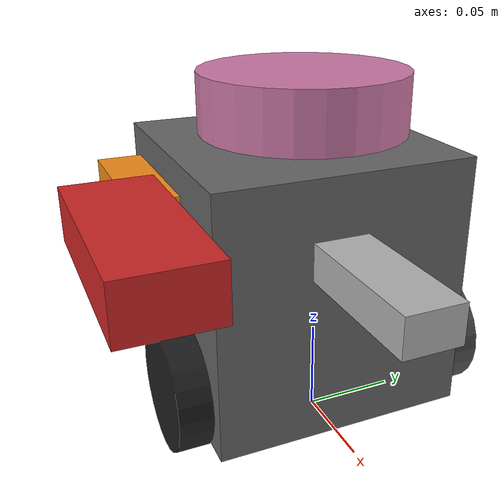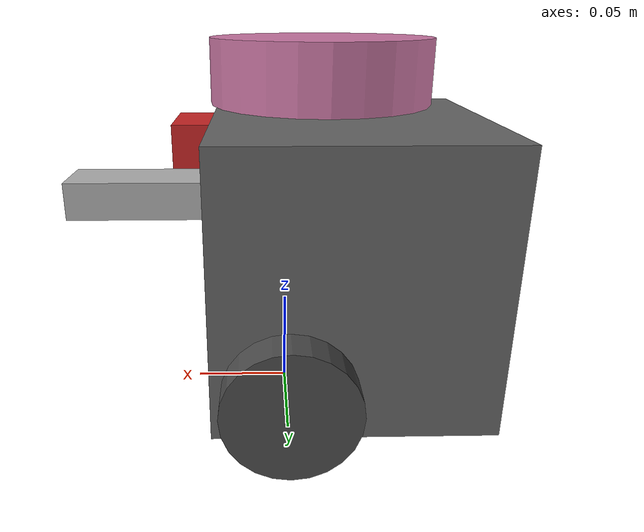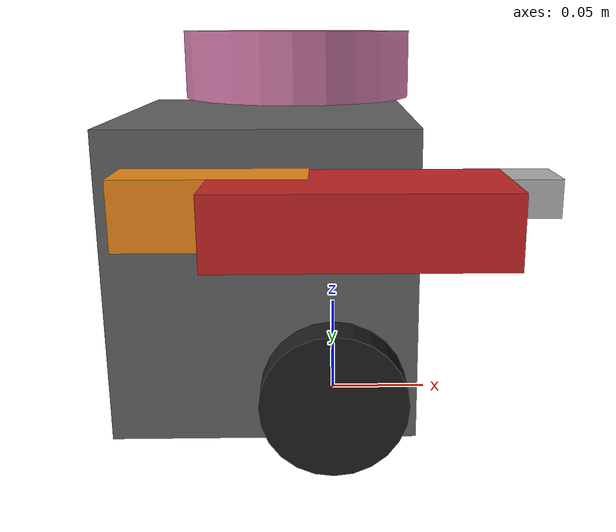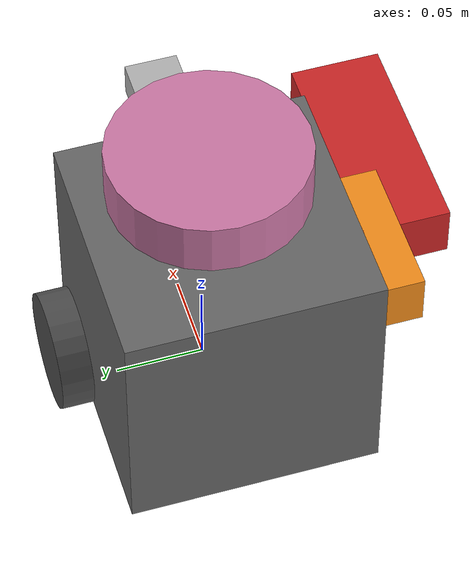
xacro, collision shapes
<?xml version="1.0"?>
<!-- TurtleBot3 Burger with Catapaf - Modern Gazebo Fortress Version                    -->
<robot name="turtlebot3_burger" xmlns:xacro="http://www.ros.org/wiki/xacro">

    <!-- Materials -->
    <material name="black">
        <color rgba="0 0 0 1" />
    </material>
    <material name="dark">
        <color rgba="0.3 0.3 0.3 1" />
    </material>
    <material name="light_black">
        <color rgba="0.4 0.4 0.4 1" />
    </material>
    <material name="blue">
        <color rgba="0 0 0.8 1" />
    </material>
    <material name="green">
        <color rgba="0 0.8 0 1" />
    </material>
    <material name="grey">
        <color rgba="0.5 0.5 0.5 1" />
    </material>
    <material name="orange">
        <color rgba="1 0.4235 0.0392 1" />
    </material>
    <material name="brown">
        <color rgba="0.8706 0.8118 0.7647 1" />
    </material>
    <material name="red">
        <color rgba="0.8 0 0 1" />
    </material>
    <material name="white">
        <color rgba="1 1 1 1" />
    </material>

    <!-- Base footprint → base_link -->
    <link name="base_footprint" />

    <joint name="base_joint" type="fixed">
        <parent link="base_footprint" />
        <child link="base_link" />
        <origin rpy="0 0 0" xyz="0 0 0.010" />
    </joint>

    <link name="base_link">
        <visual>
            <origin rpy="0 0 0" xyz="-0.032 0 0" />
            <geometry>
                <mesh filename="package://catapaf_description/meshes/bases/burger_base.stl"
                    scale="0.001 0.001 0.001" />
            </geometry>
            <material name="light_black" />
        </visual>
        <collision>
            <origin xyz="-0.032 0 0.070" />
            <geometry>
                <box size="0.140 0.140 0.143" />
            </geometry>
        </collision>
        <inertial>
            <origin xyz="-0.033 0 0.07" />
            <mass value="0.82573504" />
            <inertia ixx="0.0022124416" ixy="0" ixz="0" iyy="0.0021193702" iyz="0"
                izz="0.0020064271" />
        </inertial>
    </link>

    <!-- Wheels -->
    <joint name="wheel_left_joint" type="continuous">
        <parent link="base_link" />
        <child link="wheel_left_link" />
        <origin rpy="-1.57 0 0" xyz="0 0.08 0.023" />
        <axis xyz="0 0 1" />
    </joint>

    <link name="wheel_left_link">
        <visual>
            <origin rpy="1.57 0 0" />
            <geometry>
                <mesh filename="package://catapaf_description/meshes/wheels/left_tire.stl"
                    scale="0.001 0.001 0.001" />
            </geometry>
            <material name="dark" />
        </visual>
        <collision>
            <geometry>
                <cylinder length="0.018" radius="0.033" />
            </geometry>
        </collision>
        <inertial>
            <mass value="0.02849894" />
            <inertia ixx="1.117558e-05" ixy="0" ixz="0" iyy="1.1192413e-05" iyz="0"
                izz="2.0712558e-05" />
        </inertial>
    </link>

    <joint name="wheel_right_joint" type="continuous">
        <parent link="base_link" />
        <child link="wheel_right_link" />
        <origin rpy="-1.57 0 0" xyz="0 -0.08 0.023" />
        <axis xyz="0 0 1" />
    </joint>

    <link name="wheel_right_link">
        <visual>
            <origin rpy="1.57 0 0" />
            <geometry>
                <mesh filename="package://catapaf_description/meshes/wheels/right_tire.stl"
                    scale="0.001 0.001 0.001" />
            </geometry>
        </visual>
        <collision>
            <geometry>
                <cylinder length="0.018" radius="0.033" />
            </geometry>
        </collision>
        <inertial>
            <origin xyz="0 0 0" />
            <mass value="0.02849894" />
            <inertia ixx="1.1175580e-05" ixy="0.0" ixz="0.0" iyy="1.1192413e-05" iyz="0.0"
                izz="2.0712558e-05" />
        </inertial>
    </link>

    <!-- Back caster -->
    <joint name="caster_back_joint" type="fixed">
        <parent link="base_link" />
        <child link="caster_back_link" />
        <origin rpy="-1.57 0 0" xyz="-0.081 0 -0.004" />
    </joint>

    <link name="caster_back_link">
        <collision>
            <origin xyz="0 0.001 0" />
            <geometry>
                <box size="0.030 0.009 0.020" />
            </geometry>
        </collision>
        <inertial>
            <origin xyz="0 0 0" />
            <mass value="0.005" />
            <inertia ixx="1e-07" ixy="0.0" ixz="0.0" iyy="1e-07" iyz="0.0" izz="1e-07" />
        </inertial>
    </link>

    <!-- IMU -->
    <joint name="imu_joint" type="fixed">
        <parent link="base_link" />
        <child link="imu_link" />
        <origin xyz="-0.032 0 0.068" />
    </joint>
    <link name="imu_link" />

    <!-- Lidar -->
    <joint name="scan_joint" type="fixed">
        <parent link="base_link" />
        <child link="base_scan" />
        <origin xyz="-0.032 0 0.172" />
    </joint>

    <link name="base_scan">
        <visual>
            <geometry>
                <mesh filename="package://catapaf_description/meshes/sensors/lds.stl"
                    scale="0.001 0.001 0.001" />
            </geometry>
        </visual>
        <collision>
            <origin xyz="0.015 0 -0.0065" />
            <geometry>
                <cylinder length="0.0315" radius="0.055" />
            </geometry>
        </collision>
    </link>

    <!-- OAK-D Pro Camera -->
    <link name="oak_d_pro_camera">
        <visual>
            <origin xyz="0 0 0" rpy="0 0 1.57079632679" />
            <geometry>
                <mesh filename="package://catapaf_description/meshes/sensors/OAK-D-PRO.stl" />
            </geometry>
        </visual>
        <collision>
            <origin xyz="0 -0.005 -0.01" />
            <geometry>
                <box size="0.1 0.03 0.02" />
            </geometry>
        </collision>
        <inertial>
            <origin xyz="0 0 0" />
            <mass value="0.091" />
            <inertia ixx="1e-4" ixy="0.0" ixz="0.0" iyy="1e-4" iyz="0.0" izz="1e-4" />
        </inertial>
    </link>

    <joint name="joint_oak_d_pro_camera" type="fixed">
        <parent link="base_link" />
        <child link="oak_d_pro_camera" />
        <origin xyz="0.065 0 0.11" rpy="0 0 0" />
    </joint>

    <link name="oak_d_pro_color_optical_frame" />
    <joint name="joint_oak_d_pro_color_optical_frame" type="fixed">
        <parent link="oak_d_pro_camera" />
        <child link="oak_d_pro_color_optical_frame" />
        <origin xyz="0 0 0" rpy="-1.57079632679 0 -1.57079632679" />
    </joint>

    <link name="oak_d_pro_depth_optical_frame" />
    <joint name="joint_oak_d_pro_depth_optical_frame" type="fixed">
        <parent link="oak_d_pro_camera" />
        <child link="oak_d_pro_depth_optical_frame" />
        <origin xyz="0 0 0" rpy="-1.57079632679 0 -1.57079632679" />
    </joint>
    <link name="lds_lfcd_sensor" />
    <joint name="joint_lds_lfcd_sensor" type="fixed">
        <parent link="base_scan" />
        <child link="lds_lfcd_sensor" />
        <origin xyz="0 0 0" rpy="0 0 0" />
    </joint>
    <link name="camera_sensor" />
    <joint name="joint_camera_sensor" type="fixed">
        <parent link="oak_d_pro_color_optical_frame" />
        <child link="camera_sensor" />
        <origin xyz="0 0 0" rpy="0 0 0" />
    </joint>

    <!-- CATAPAF BASE -->
    <link name="catapaf_base">
        <visual>
            <geometry>
                <mesh filename="package://catapaf_description/meshes/catapaf/baseEtServo.stl" />
            </geometry>
        </visual>
        <collision>
            <origin xyz="-0.02 0.02 0" />
            <geometry>
                <box size="0.08 0.05 0.03" />
            </geometry>
        </collision>
        <inertial>
            <origin xyz="0 0 0" />
            <mass value="0.15" />
            <inertia ixx="0.0002" ixy="0" ixz="0" iyy="0.0002" iyz="0" izz="0.0002" />
        </inertial>
    </link>

    <joint name="catapaf_base_mount" type="fixed">
        <parent link="base_link" />
        <child link="catapaf_base" />
        <origin xyz="-0.03 -0.09 0.11" />
    </joint>

    <!-- CATAPAF ARM -->
    <link name="catapaf_arm">
        <visual>
            <geometry>
                <mesh filename="package://catapaf_description/meshes/catapaf/catapaf.stl" />
            </geometry>
        </visual>
        <collision>
            <origin xyz="0.04 0 0" />
            <geometry>
                <box size="0.12 0.05 0.03" />
            </geometry>
        </collision>
        <inertial>
            <origin xyz="0.05596964 -0.00000099 -0.00621362" />
            <mass value="0.05000000" />
            <inertia ixx="0.00000512" ixy="-0.00000000" ixz="0.00000175" iyy="0.00003787"
                iyz="0.00000000"
                izz="0.00003918" />
        </inertial>
    </link>

    <joint name="catapaf_joint" type="revolute">
        <parent link="catapaf_base" />
        <child link="catapaf_arm" />
        <origin xyz="0 -0.008 0" />
        <axis xyz="0 1 0" />
        <limit effort="1.0" lower="-1.5" upper="1.3" velocity="5.0" />
    </joint>

    <!-- GAZEBO FORTRESS PLUGINS -->

    <!-- Differential Drive Controller -->
    <gazebo>
        <plugin filename="ignition-gazebo-diff-drive-system"
            name="ignition::gazebo::systems::DiffDrive">
            <left_joint>wheel_left_joint</left_joint>
            <right_joint>wheel_right_joint</right_joint>
            <wheel_separation>0.160</wheel_separation>
            <wheel_radius>0.033</wheel_radius>
            <odom_publish_frequency>30</odom_publish_frequency>
            <topic>cmd_vel</topic>
            <odom_topic>odometry</odom_topic>
            <frame_id>odom</frame_id>
            <child_frame_id>base_footprint</child_frame_id>
            <max_linear_acceleration>1.0</max_linear_acceleration>
            <max_angular_acceleration>2.0</max_angular_acceleration>
        </plugin>
    </gazebo>

    <!-- Joint State Publisher -->
    <gazebo>
        <plugin filename="ignition-gazebo-joint-state-publisher-system"
            name="ignition::gazebo::systems::JointStatePublisher">
            <topic>joint_states</topic>
        </plugin>
    </gazebo>

    <!-- LiDAR Sensor Plugin -->
    <gazebo reference="base_scan">
        <sensor name="lds_lfcd_sensor" type="gpu_lidar">
            <topic>scan</topic>
            <update_rate>10</update_rate>
            <frame_id>base_scan</frame_id>
            <child_frame_id>base_scan</child_frame_id>
            <frame>base_scan</frame>
            <pose>0 0 0 0 0 0</pose>
            <lidar>
                <scan>
                    <horizontal>
                        <samples>360</samples>
                        <resolution>1</resolution>
                        <min_angle>0.0</min_angle>
                        <max_angle>6.28319</max_angle>
                    </horizontal>
                </scan>
                <range>
                    <min>0.12</min>
                    <max>3.5</max>
                    <resolution>0.015</resolution>
                </range>
                <noise>
                    <type>gaussian</type>
                    <mean>0.0</mean>
                    <stddev>0.01</stddev>
                </noise>
            </lidar>
            <alwaysOn>1</alwaysOn>
            <visualize>false</visualize>
        </sensor>
    </gazebo>

    <!-- IMU Sensor Plugin -->
    <gazebo reference="imu_link">
        <sensor name="imu" type="imu">
            <topic>imu</topic>
            <update_rate>50</update_rate>
            <frame_id>imu_link</frame_id>
            <frame>imu_link</frame>
            <pose>0 0 0 0 0 0</pose>
            <imu>
                <angular_velocity>
                    <x>
                        <noise type="gaussian">
                            <mean>0.0</mean>
                            <stddev>2e-4</stddev>
                        </noise>
                    </x>
                    <y>
                        <noise type="gaussian">
                            <mean>0.0</mean>
                            <stddev>2e-4</stddev>
                        </noise>
                    </y>
                    <z>
                        <noise type="gaussian">
                            <mean>0.0</mean>
                            <stddev>2e-4</stddev>
                        </noise>
                    </z>
                </angular_velocity>
                <linear_acceleration>
                    <x>
                        <noise type="gaussian">
                            <mean>0.0</mean>
                            <stddev>1.7e-2</stddev>
                        </noise>
                    </x>
                    <y>
                        <noise type="gaussian">
                            <mean>0.0</mean>
                            <stddev>1.7e-2</stddev>
                        </noise>
                    </y>
                    <z>
                        <noise type="gaussian">
                            <mean>0.0</mean>
                            <stddev>1.7e-2</stddev>
                        </noise>
                    </z>
                </linear_acceleration>
            </imu>
            <alwaysOn>1</alwaysOn>
        </sensor>
    </gazebo>

    <!-- OAK-D Pro Camera Sensor Plugin -->
    <gazebo reference="oak_d_pro_camera">
        <sensor name="camera_sensor" type="camera">
            <topic>camera/image_raw</topic>
            <update_rate>10</update_rate>
            <frame_id>oak_d_pro_color_optical_frame</frame_id>
            <frame>oak_d_pro_color_optical_frame</frame>
            <child_frame_id>oak_d_pro_color_optical_frame</child_frame_id>

            <pose>0 0 0 0 0 0</pose>
            <camera>
                <horizontal_fov>1.3962634</horizontal_fov>
                <image>
                    <width>640</width>
                    <height>480</height>
                    <format>R8G8B8</format>
                </image>
                <clip>
                    <near>0.15</near>
                    <far>300</far>
                </clip>
                <noise>
                    <type>gaussian</type>
                    <mean>0.0</mean>
                    <stddev>0.007</stddev>
                </noise>
            </camera>
            <alwaysOn>1</alwaysOn>
            <visualize>true</visualize>
        </sensor>
    </gazebo>

    <!-- Catapaf Arm Joint Position Controller -->
    <gazebo>
        <plugin filename="ignition-gazebo-joint-position-controller-system"
            name="ignition::gazebo::systems::JointPositionController">
            <joint_name>catapaf_joint</joint_name>
            <topic>catapaf_arm/position</topic>
            <p_gain>10.0</p_gain>
            <i_gain>0.5</i_gain>
            <d_gain>0.5</d_gain>
            <i_max>1.0</i_max>
            <i_min>-1.0</i_min>
            <cmd_max>10.0</cmd_max>
            <cmd_min>-10.0</cmd_min>
        </plugin>
    </gazebo>

    <!-- Gazebo material properties -->
    <gazebo reference="base_link">
        <material>Gazebo/DarkGrey</material>
    </gazebo>

    <gazebo reference="wheel_left_link">
        <mu1>0.3</mu1>
        <mu2>0.3</mu2>
        <kp>500000.0</kp>
        <kd>10.0</kd>
        <minDepth>0.001</minDepth>
        <maxVel>0.5</maxVel>
        <fdir1>1 0 0</fdir1>
        <material>Gazebo/FlatBlack</material>
    </gazebo>

    <gazebo reference="wheel_right_link">
        <mu1>0.3</mu1>
        <mu2>0.3</mu2>
        <kp>500000.0</kp>
        <kd>10.0</kd>
        <minDepth>0.001</minDepth>
        <maxVel>0.5</maxVel>
        <fdir1>1 0 0</fdir1>
        <material>Gazebo/FlatBlack</material>
    </gazebo>

    <gazebo reference="caster_back_link">
        <mu1>0.01</mu1>
        <mu2>0.01</mu2>
        <kp>1000000.0</kp>
        <kd>100.0</kd>
        <minDepth>0.001</minDepth>
        <maxVel>1.0</maxVel>
        <material>Gazebo/FlatBlack</material>
    </gazebo>

    <gazebo reference="catapaf_base">
        <material>Gazebo/Orange</material>
    </gazebo>

    <gazebo reference="catapaf_arm">
        <material>Gazebo/Red</material>
    </gazebo>

</robot>
